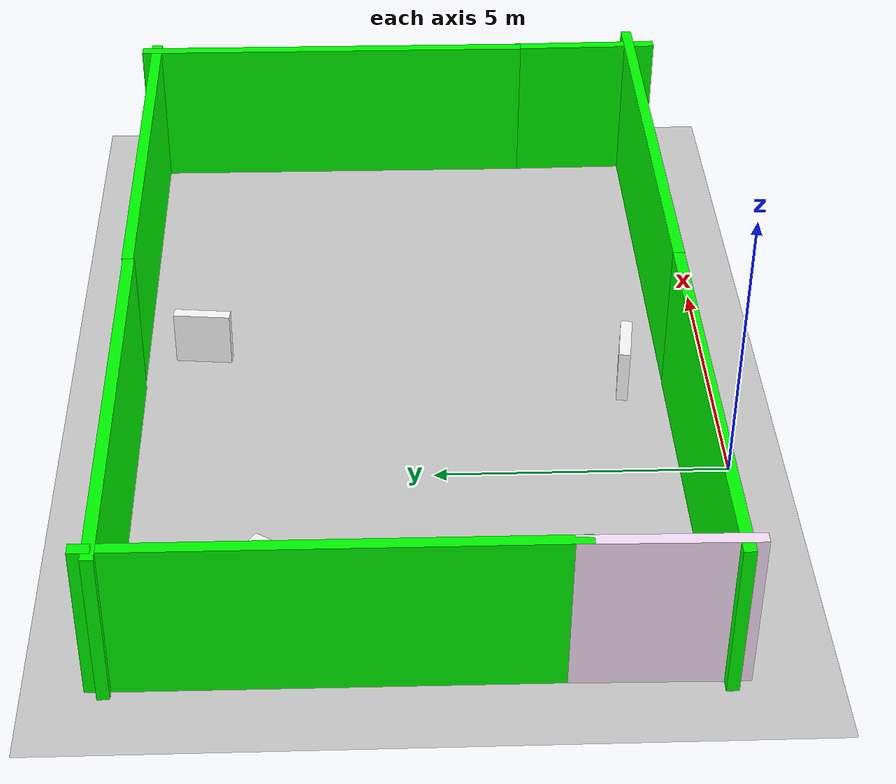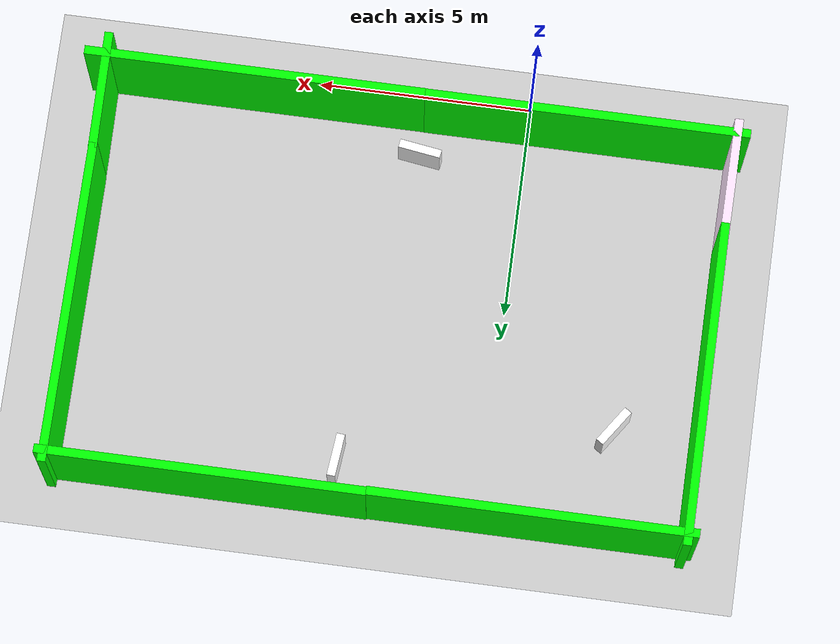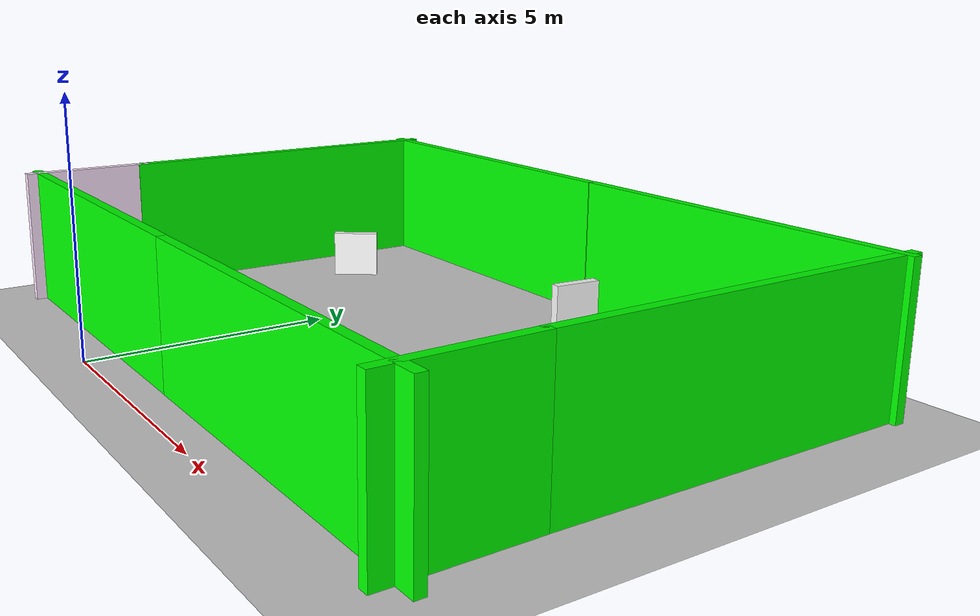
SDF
<sdf version="1.7">
 <world name="default">
  <light name="sun" type="directional">
   <pose>0 0 10 0 -0 0</pose>
   <diffuse>0.8 0.8 0.8 1</diffuse>
   <specular>0.2 0.2 0.2 1</specular>
   <attenuation>
    <range>1000</range>
    <constant>0.9</constant>
    <linear>0.01</linear>
    <quadratic>0.001</quadratic>
   </attenuation>
   <direction>-0.5 0.1 -0.9</direction>
   <spot><inner_angle>0</inner_angle><outer_angle>0</outer_angle><falloff>0</falloff></spot>
  </light>
  <gravity>0 0 -9.8</gravity>
  <magnetic_field>6e-06 2.3e-05 -4.2e-05</magnetic_field>
  <atmosphere type="adiabatic"/>
  <physics type="ode">
   <max_step_size>0.001</max_step_size>
   <real_time_factor>1</real_time_factor>
   <real_time_update_rate>1000</real_time_update_rate>
  </physics>
  <scene><ambient>0.4 0.4 0.4 1</ambient><background>0.7 0.7 0.7 1</background><shadows>1</shadows></scene>
  <spherical_coordinates>
   <surface_model>EARTH_WGS84</surface_model>
   <latitude_deg>0</latitude_deg>
   <longitude_deg>0</longitude_deg>
   <elevation>0</elevation>
   <heading_deg>0</heading_deg>
  </spherical_coordinates>
  <model name="ground_plane">
   <static>1</static>
   <link name="link">
    <collision name="collision">
     <geometry><plane><normal>0 0 1</normal><size>100 100</size></plane></geometry>
     <surface><friction><ode><mu>100</mu><mu2>50</mu2></ode></friction></surface>
    </collision>
    <visual name="visual">
     <cast_shadows>0</cast_shadows>
     <geometry><plane><normal>0 0 1</normal><size>100 100</size></plane></geometry>
     <material>
      <script><uri>file://media/materials/scripts/gazebo.material</uri><name>Gazebo/Grey</name></script>
     </material>
    </visual>
   </link>
  </model>
  <model name="aruco_marker1">
   <link name="marker">
    <visual name="visual">
     <geometry><box><size>1 0.2 1</size></box></geometry>
     <material>
      <script>
       <uri>model://aruco_marker1/materials/scripts</uri>
       <uri>model://aruco_marker1/materials/textures</uri>
       <name>arucomarker1/Marker</name>
      </script>
      <ambient>1 1 1 1</ambient>
      <diffuse>1 1 1 1</diffuse>
      <specular>0 0 0 1</specular>
      <emissive>1 1 1 0</emissive>
      <shader type="vertex"><normal_map>__default__</normal_map></shader>
     </material>
    </visual>
    <collision name="collision"><geometry><box><size>1 1 1</size></box></geometry></collision>
    <inertial>
     <inertia><ixx>1</ixx><ixy>0</ixy><ixz>0</ixz><iyy>1</iyy><iyz>0</iyz><izz>1</izz></inertia>
     <mass>1</mass>
    </inertial>
   </link>
   <pose>3.39544 9.01039 0.5 0 -0 -1.67123</pose>
  </model>
  <model name="aruco_marker2">
   <link name="marker">
    <visual name="visual">
     <geometry><box><size>1 0.2 1</size></box></geometry>
     <material>
      <script>
       <uri>model://aruco_marker2/materials/scripts</uri>
       <uri>model://aruco_marker2/materials/textures</uri>
       <name>arucomarker2/Marker</name>
      </script>
      <ambient>1 1 1 1</ambient>
      <diffuse>1 1 1 1</diffuse>
      <specular>0 0 0 1</specular>
      <emissive>1 1 1 0</emissive>
      <shader type="vertex"><normal_map>__default__</normal_map></shader>
     </material>
    </visual>
    <collision name="collision"><geometry><box><size>1 1 1</size></box></geometry></collision>
    <inertial>
     <inertia><ixx>1</ixx><ixy>0</ixy><ixz>0</ixz><iyy>1</iyy><iyz>0</iyz><izz>1</izz></inertia>
     <mass>1</mass>
    </inertial>
   </link>
   <pose>2.43302 1.5344 0.5 0 -0 -0.14482</pose>
  </model>
  <model name="aruco_marker3">
   <link name="marker">
    <visual name="visual">
     <geometry><box><size>1 0.2 1</size></box></geometry>
     <material>
      <script>
       <uri>model://aruco_marker3/materials/scripts</uri>
       <uri>model://aruco_marker3/materials/textures</uri>
       <name>arucomarker3/Marker</name>
      </script>
      <ambient>1 1 1 1</ambient>
      <diffuse>1 1 1 1</diffuse>
      <specular>0 0 0 1</specular>
      <emissive>1 1 1 0</emissive>
      <shader type="vertex"><normal_map>__default__</normal_map></shader>
     </material>
    </visual>
    <collision name="collision"><geometry><box><size>1 1 1</size></box></geometry></collision>
    <inertial>
     <inertia><ixx>1</ixx><ixy>0</ixy><ixz>0</ixz><iyy>1</iyy><iyz>0</iyz><izz>1</izz></inertia>
     <mass>1</mass>
    </inertial>
   </link>
   <pose>-2.82024 7.51484 0.5 0 0 -2.17197</pose>
  </model>
  <model name="grey_wall_clone_clone_0_clone_1">
   <link name="link">
    <pose>-2.26207 0.004826 1.4 0 -0 0</pose>
    <inertial>
     <inertia><ixx>0</ixx><ixy>0</ixy><ixz>0</ixz><iyy>0</iyy><iyz>0</iyz><izz>0</izz></inertia>
     <mass>0</mass>
    </inertial>
    <visual name="visual">
     <cast_shadows>0</cast_shadows>
     <geometry><box><size>2.76853 0.2 2.8</size></box></geometry>
     <material>
      <script>
       <uri>model://grey_wall/materials/scripts</uri>
       <uri>model://grey_wall/materials/textures</uri>
       <name>vrc/grey_wall</name>
      </script>
      <shader type="pixel"><normal_map>__default__</normal_map></shader>
      <ambient>0 1 0 0</ambient>
      <diffuse>1 0.9 1 1</diffuse>
      <specular>0 0 0 1</specular>
      <emissive>0 0 0 1</emissive>
     </material>
    </visual>
    <collision name="collision">
     <geometry><box><size>2.76853 0.2 2.8</size></box></geometry>
     <surface>
      <friction>
       <ode><mu>1</mu><mu2>1</mu2><fdir1>0 0 0</fdir1><slip1>0</slip1><slip2>0</slip2></ode>
       <torsional>
        <coefficient>1</coefficient>
        <patch_radius>0</patch_radius>
        <surface_radius>0</surface_radius>
        <use_patch_radius>1</use_patch_radius>
        <ode><slip>0</slip></ode>
       </torsional>
      </friction>
      <bounce><restitution_coefficient>0</restitution_coefficient><threshold>1e+06</threshold></bounce>
      <contact>
       <collide_without_contact>0</collide_without_contact>
       <collide_without_contact_bitmask>1</collide_without_contact_bitmask>
       <collide_bitmask>1</collide_bitmask>
       <ode>
        <soft_cfm>0</soft_cfm>
        <soft_erp>0.2</soft_erp>
        <kp>1e+13</kp>
        <kd>1</kd>
        <max_vel>0.01</max_vel>
        <min_depth>0</min_depth>
       </ode>
       <bullet>
        <split_impulse>1</split_impulse>
        <split_impulse_penetration_threshold>-0.01</split_impulse_penetration_threshold>
        <soft_cfm>0</soft_cfm>
        <soft_erp>0.2</soft_erp>
        <kp>1e+13</kp>
        <kd>1</kd>
       </bullet>
      </contact>
     </surface>
    </collision>
   </link>
   <static>1</static>
   <pose>-4.79067 -0.45874 0 0 0 -1.58563</pose>
  </model>
  <model name="grey_wall_clone_0_clone">
   <link name="link">
    <pose>0 0 1.4 0 -0 0</pose>
    <inertial>
     <mass>1</mass>
     <inertia><ixx>1</ixx><ixy>0</ixy><ixz>0</ixz><iyy>1</iyy><iyz>0</iyz><izz>1</izz></inertia>
    </inertial>
    <visual name="visual">
     <cast_shadows>0</cast_shadows>
     <geometry><box><size>7.5 0.2 2.8</size></box></geometry>
     <material>
      <script>
       <uri>model://grey_wall/materials/scripts</uri>
       <uri>model://grey_wall/materials/textures</uri>
       <name>vrc/grey_wall</name>
      </script>
      <shader type="pixel"><normal_map>__default__</normal_map></shader>
      <ambient>0 1 0 0</ambient>
      <diffuse>1 1 1 1</diffuse>
      <specular>0 0 0 1</specular>
      <emissive>0 0 0 1</emissive>
     </material>
    </visual>
    <collision name="collision">
     <geometry><box><size>7.5 0.2 2.8</size></box></geometry>
     <surface>
      <friction>
       <ode><mu>1</mu><mu2>1</mu2><fdir1>0 0 0</fdir1><slip1>0</slip1><slip2>0</slip2></ode>
       <torsional>
        <coefficient>1</coefficient>
        <patch_radius>0</patch_radius>
        <surface_radius>0</surface_radius>
        <use_patch_radius>1</use_patch_radius>
        <ode><slip>0</slip></ode>
       </torsional>
      </friction>
      <bounce><restitution_coefficient>0</restitution_coefficient><threshold>1e+06</threshold></bounce>
      <contact>
       <collide_without_contact>0</collide_without_contact>
       <collide_without_contact_bitmask>1</collide_without_contact_bitmask>
       <collide_bitmask>1</collide_bitmask>
       <ode>
        <soft_cfm>0</soft_cfm>
        <soft_erp>0.2</soft_erp>
        <kp>1e+13</kp>
        <kd>1</kd>
        <max_vel>0.01</max_vel>
        <min_depth>0</min_depth>
       </ode>
       <bullet>
        <split_impulse>1</split_impulse>
        <split_impulse_penetration_threshold>-0.01</split_impulse_penetration_threshold>
        <soft_cfm>0</soft_cfm>
        <soft_erp>0.2</soft_erp>
        <kp>1e+13</kp>
        <kd>1</kd>
       </bullet>
      </contact>
     </surface>
    </collision>
   </link>
   <static>1</static>
   <pose>-1.3192 0.736463 0 0 -0 0</pose>
  </model>
  <model name="grey_wall_clone_clone">
   <link name="link">
    <pose>0 -0 1.4 0 -0 0</pose>
    <inertial>
     <mass>1</mass>
     <inertia><ixx>1</ixx><ixy>0</ixy><ixz>0</ixz><iyy>1</iyy><iyz>0</iyz><izz>1</izz></inertia>
    </inertial>
    <visual name="visual">
     <cast_shadows>0</cast_shadows>
     <geometry><box><size>7.5 0.2 2.8</size></box></geometry>
     <material>
      <script>
       <uri>model://grey_wall/materials/scripts</uri>
       <uri>model://grey_wall/materials/textures</uri>
       <name>vrc/grey_wall</name>
      </script>
      <shader type="pixel"><normal_map>__default__</normal_map></shader>
      <ambient>0 1 0 0</ambient>
      <diffuse>1 1 1 1</diffuse>
      <specular>0 0 0 1</specular>
      <emissive>0 0 0 1</emissive>
     </material>
    </visual>
    <collision name="collision">
     <geometry><box><size>7.5 0.2 2.8</size></box></geometry>
     <surface>
      <friction>
       <ode><mu>1</mu><mu2>1</mu2><fdir1>0 0 0</fdir1><slip1>0</slip1><slip2>0</slip2></ode>
       <torsional>
        <coefficient>1</coefficient>
        <patch_radius>0</patch_radius>
        <surface_radius>0</surface_radius>
        <use_patch_radius>1</use_patch_radius>
        <ode><slip>0</slip></ode>
       </torsional>
      </friction>
      <bounce><restitution_coefficient>0</restitution_coefficient><threshold>1e+06</threshold></bounce>
      <contact>
       <collide_without_contact>0</collide_without_contact>
       <collide_without_contact_bitmask>1</collide_without_contact_bitmask>
       <collide_bitmask>1</collide_bitmask>
       <ode>
        <soft_cfm>0</soft_cfm>
        <soft_erp>0.2</soft_erp>
        <kp>1e+13</kp>
        <kd>1</kd>
        <max_vel>0.01</max_vel>
        <min_depth>0</min_depth>
       </ode>
       <bullet>
        <split_impulse>1</split_impulse>
        <split_impulse_penetration_threshold>-0.01</split_impulse_penetration_threshold>
        <soft_cfm>0</soft_cfm>
        <soft_erp>0.2</soft_erp>
        <kp>1e+13</kp>
        <kd>1</kd>
       </bullet>
      </contact>
     </surface>
    </collision>
   </link>
   <static>1</static>
   <pose>-4.71715 6.65564 0 0 -0 1.56721</pose>
  </model>
  <model name="grey_wall_clone_0">
   <link name="link">
    <pose>0.085461 0.025083 1.4 0 -0 0</pose>
    <inertial>
     <inertia><ixx>0</ixx><ixy>0</ixy><ixz>0</ixz><iyy>0</iyy><iyz>0</iyz><izz>0</izz></inertia>
     <mass>0</mass>
    </inertial>
    <visual name="visual">
     <cast_shadows>0</cast_shadows>
     <geometry><box><size>7.89532 0.2 2.8</size></box></geometry>
     <material>
      <script>
       <uri>model://grey_wall/materials/scripts</uri>
       <uri>model://grey_wall/materials/textures</uri>
       <name>vrc/grey_wall</name>
      </script>
      <shader type="pixel"><normal_map>__default__</normal_map></shader>
      <ambient>0 1 0 0</ambient>
      <diffuse>1 1 1 1</diffuse>
      <specular>0 0 0 1</specular>
      <emissive>0 0 0 1</emissive>
     </material>
    </visual>
    <collision name="collision">
     <geometry><box><size>7.89532 0.2 2.8</size></box></geometry>
     <surface>
      <friction>
       <ode><mu>1</mu><mu2>1</mu2><fdir1>0 0 0</fdir1><slip1>0</slip1><slip2>0</slip2></ode>
       <torsional>
        <coefficient>1</coefficient>
        <patch_radius>0</patch_radius>
        <surface_radius>0</surface_radius>
        <use_patch_radius>1</use_patch_radius>
        <ode><slip>0</slip></ode>
       </torsional>
      </friction>
      <bounce><restitution_coefficient>0</restitution_coefficient><threshold>1e+06</threshold></bounce>
      <contact>
       <collide_without_contact>0</collide_without_contact>
       <collide_without_contact_bitmask>1</collide_without_contact_bitmask>
       <collide_bitmask>1</collide_bitmask>
       <ode>
        <soft_cfm>0</soft_cfm>
        <soft_erp>0.2</soft_erp>
        <kp>1e+13</kp>
        <kd>1</kd>
        <max_vel>0.01</max_vel>
        <min_depth>0</min_depth>
       </ode>
       <bullet>
        <split_impulse>1</split_impulse>
        <split_impulse_penetration_threshold>-0.01</split_impulse_penetration_threshold>
        <soft_cfm>0</soft_cfm>
        <soft_erp>0.2</soft_erp>
        <kp>1e+13</kp>
        <kd>1</kd>
       </bullet>
      </contact>
     </surface>
    </collision>
   </link>
   <static>1</static>
   <pose>6.28781 0.70601 0 0 -0 0</pose>
  </model>
  <model name="grey_wall_clone_clone_0_clone">
   <link name="link">
    <pose>-2.26207 0.004827 1.4 0 -0 0</pose>
    <inertial>
     <inertia><ixx>0</ixx><ixy>0</ixy><ixz>0</ixz><iyy>0</iyy><iyz>0</iyz><izz>0</izz></inertia>
     <mass>0</mass>
    </inertial>
    <visual name="visual">
     <cast_shadows>0</cast_shadows>
     <geometry><box><size>2.76853 0.2 2.8</size></box></geometry>
     <material>
      <script>
       <uri>model://grey_wall/materials/scripts</uri>
       <uri>model://grey_wall/materials/textures</uri>
       <name>vrc/grey_wall</name>
      </script>
      <shader type="pixel"><normal_map>__default__</normal_map></shader>
      <ambient>0 1 0 0</ambient>
      <diffuse>1 1 1 1</diffuse>
      <specular>0 0 0 1</specular>
      <emissive>0 0 0 1</emissive>
     </material>
    </visual>
    <collision name="collision">
     <geometry><box><size>2.76853 0.2 2.8</size></box></geometry>
     <surface>
      <friction>
       <ode><mu>1</mu><mu2>1</mu2><fdir1>0 0 0</fdir1><slip1>0</slip1><slip2>0</slip2></ode>
       <torsional>
        <coefficient>1</coefficient>
        <patch_radius>0</patch_radius>
        <surface_radius>0</surface_radius>
        <use_patch_radius>1</use_patch_radius>
        <ode><slip>0</slip></ode>
       </torsional>
      </friction>
      <bounce><restitution_coefficient>0</restitution_coefficient><threshold>1e+06</threshold></bounce>
      <contact>
       <collide_without_contact>0</collide_without_contact>
       <collide_without_contact_bitmask>1</collide_without_contact_bitmask>
       <collide_bitmask>1</collide_bitmask>
       <ode>
        <soft_cfm>0</soft_cfm>
        <soft_erp>0.2</soft_erp>
        <kp>1e+13</kp>
        <kd>1</kd>
        <max_vel>0.01</max_vel>
        <min_depth>0</min_depth>
       </ode>
       <bullet>
        <split_impulse>1</split_impulse>
        <split_impulse_penetration_threshold>-0.01</split_impulse_penetration_threshold>
        <soft_cfm>0</soft_cfm>
        <soft_erp>0.2</soft_erp>
        <kp>1e+13</kp>
        <kd>1</kd>
       </bullet>
      </contact>
     </surface>
    </collision>
   </link>
   <static>1</static>
   <pose>9.82532 -0.631746 0 0 0 -1.55978</pose>
  </model>
  <model name="grey_wall_clone_clone_0">
   <link name="link">
    <pose>0 0 1.4 0 -0 0</pose>
    <inertial>
     <mass>1</mass>
     <inertia><ixx>1</ixx><ixy>0</ixy><ixz>0</ixz><iyy>1</iyy><iyz>0</iyz><izz>1</izz></inertia>
    </inertial>
    <visual name="visual">
     <cast_shadows>0</cast_shadows>
     <geometry><box><size>7.5 0.2 2.8</size></box></geometry>
     <material>
      <script>
       <uri>model://grey_wall/materials/scripts</uri>
       <uri>model://grey_wall/materials/textures</uri>
       <name>vrc/grey_wall</name>
      </script>
      <shader type="pixel"><normal_map>__default__</normal_map></shader>
      <ambient>0 1 0 0</ambient>
      <diffuse>1 1 1 1</diffuse>
      <specular>0 0 0 1</specular>
      <emissive>0 0 0 1</emissive>
     </material>
    </visual>
    <collision name="collision">
     <geometry><box><size>7.5 0.2 2.8</size></box></geometry>
     <surface>
      <friction>
       <ode><mu>1</mu><mu2>1</mu2><fdir1>0 0 0</fdir1><slip1>0</slip1><slip2>0</slip2></ode>
       <torsional>
        <coefficient>1</coefficient>
        <patch_radius>0</patch_radius>
        <surface_radius>0</surface_radius>
        <use_patch_radius>1</use_patch_radius>
        <ode><slip>0</slip></ode>
       </torsional>
      </friction>
      <bounce><restitution_coefficient>0</restitution_coefficient><threshold>1e+06</threshold></bounce>
      <contact>
       <collide_without_contact>0</collide_without_contact>
       <collide_without_contact_bitmask>1</collide_without_contact_bitmask>
       <collide_bitmask>1</collide_bitmask>
       <ode>
        <soft_cfm>0</soft_cfm>
        <soft_erp>0.2</soft_erp>
        <kp>1e+13</kp>
        <kd>1</kd>
        <max_vel>0.01</max_vel>
        <min_depth>0</min_depth>
       </ode>
       <bullet>
        <split_impulse>1</split_impulse>
        <split_impulse_penetration_threshold>-0.01</split_impulse_penetration_threshold>
        <soft_cfm>0</soft_cfm>
        <soft_erp>0.2</soft_erp>
        <kp>1e+13</kp>
        <kd>1</kd>
       </bullet>
      </contact>
     </surface>
    </collision>
   </link>
   <static>1</static>
   <pose>9.80568 6.65271 0 0 0 -1.57637</pose>
  </model>
  <model name="grey_wall">
   <link name="link">
    <pose>0 0 1.4 0 -0 0</pose>
    <inertial>
     <mass>1</mass>
     <inertia><ixx>1</ixx><ixy>0</ixy><ixz>0</ixz><iyy>1</iyy><iyz>0</iyz><izz>1</izz></inertia>
    </inertial>
    <visual name="visual">
     <cast_shadows>0</cast_shadows>
     <geometry><box><size>7.5 0.2 2.8</size></box></geometry>
     <material>
      <script>
       <uri>model://grey_wall/materials/scripts</uri>
       <uri>model://grey_wall/materials/textures</uri>
       <name>vrc/grey_wall</name>
      </script>
      <shader type="pixel"><normal_map>__default__</normal_map></shader>
      <ambient>0 1 0 0</ambient>
      <diffuse>1 1 1 1</diffuse>
      <specular>0 0 0 1</specular>
      <emissive>0 0 0 1</emissive>
     </material>
    </visual>
    <collision name="collision">
     <geometry><box><size>7.5 0.2 2.8</size></box></geometry>
     <surface>
      <friction>
       <ode><mu>1</mu><mu2>1</mu2><fdir1>0 0 0</fdir1><slip1>0</slip1><slip2>0</slip2></ode>
       <torsional>
        <coefficient>1</coefficient>
        <patch_radius>0</patch_radius>
        <surface_radius>0</surface_radius>
        <use_patch_radius>1</use_patch_radius>
        <ode><slip>0</slip></ode>
       </torsional>
      </friction>
      <bounce><restitution_coefficient>0</restitution_coefficient><threshold>1e+06</threshold></bounce>
      <contact>
       <collide_without_contact>0</collide_without_contact>
       <collide_without_contact_bitmask>1</collide_without_contact_bitmask>
       <collide_bitmask>1</collide_bitmask>
       <ode>
        <soft_cfm>0</soft_cfm>
        <soft_erp>0.2</soft_erp>
        <kp>1e+13</kp>
        <kd>1</kd>
        <max_vel>0.01</max_vel>
        <min_depth>0</min_depth>
       </ode>
       <bullet>
        <split_impulse>1</split_impulse>
        <split_impulse_penetration_threshold>-0.01</split_impulse_penetration_threshold>
        <soft_cfm>0</soft_cfm>
        <soft_erp>0.2</soft_erp>
        <kp>1e+13</kp>
        <kd>1</kd>
       </bullet>
      </contact>
     </surface>
    </collision>
   </link>
   <static>1</static>
   <pose>6.2891 10.1232 0 0 -0 0</pose>
  </model>
  <model name="grey_wall_clone">
   <link name="link">
    <pose>0 0 1.4 0 -0 0</pose>
    <inertial>
     <mass>1</mass>
     <inertia><ixx>1</ixx><ixy>0</ixy><ixz>0</ixz><iyy>1</iyy><iyz>0</iyz><izz>1</izz></inertia>
    </inertial>
    <visual name="visual">
     <cast_shadows>0</cast_shadows>
     <geometry><box><size>7.5 0.2 2.8</size></box></geometry>
     <material>
      <script>
       <uri>model://grey_wall/materials/scripts</uri>
       <uri>model://grey_wall/materials/textures</uri>
       <name>vrc/grey_wall</name>
      </script>
      <shader type="pixel"><normal_map>__default__</normal_map></shader>
      <ambient>0 1 0 0</ambient>
      <diffuse>1 1 1 1</diffuse>
      <specular>0 0 0 1</specular>
      <emissive>0 0 0 1</emissive>
     </material>
    </visual>
    <collision name="collision">
     <geometry><box><size>7.5 0.2 2.8</size></box></geometry>
     <surface>
      <friction>
       <ode><mu>1</mu><mu2>1</mu2><fdir1>0 0 0</fdir1><slip1>0</slip1><slip2>0</slip2></ode>
       <torsional>
        <coefficient>1</coefficient>
        <patch_radius>0</patch_radius>
        <surface_radius>0</surface_radius>
        <use_patch_radius>1</use_patch_radius>
        <ode><slip>0</slip></ode>
       </torsional>
      </friction>
      <bounce><restitution_coefficient>0</restitution_coefficient><threshold>1e+06</threshold></bounce>
      <contact>
       <collide_without_contact>0</collide_without_contact>
       <collide_without_contact_bitmask>1</collide_without_contact_bitmask>
       <collide_bitmask>1</collide_bitmask>
       <ode>
        <soft_cfm>0</soft_cfm>
        <soft_erp>0.2</soft_erp>
        <kp>1e+13</kp>
        <kd>1</kd>
        <max_vel>0.01</max_vel>
        <min_depth>0</min_depth>
       </ode>
       <bullet>
        <split_impulse>1</split_impulse>
        <split_impulse_penetration_threshold>-0.01</split_impulse_penetration_threshold>
        <soft_cfm>0</soft_cfm>
        <soft_erp>0.2</soft_erp>
        <kp>1e+13</kp>
        <kd>1</kd>
       </bullet>
      </contact>
     </surface>
    </collision>
   </link>
   <static>1</static>
   <pose>-1.20665 10.105 0 0 -0 0</pose>
  </model>
 </world>
</sdf>
